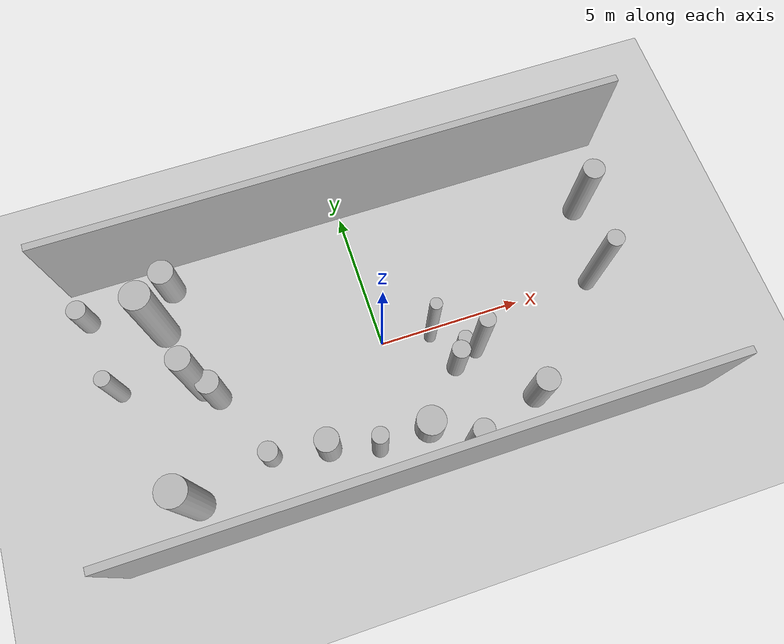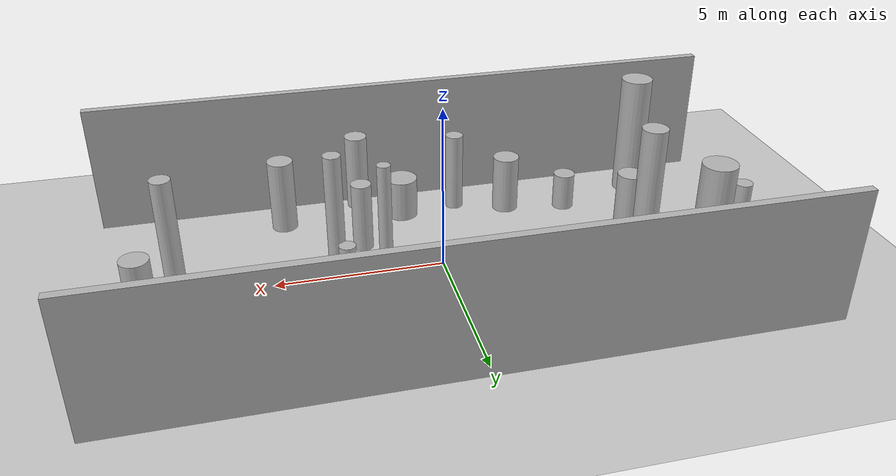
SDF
<?xml version="1.0"?>
<sdf version="1.4">
  <world name="default">
    <gui>
      <camera name="user_camera">
        <pose>-20 -30 40 0 0.66 0.83</pose>
      </camera>
    </gui>
    <include>
      <uri>model://ground_plane</uri>
    </include>
    <include>
      <uri>model://sun</uri>
    </include>
    <scene>
      <shadows>0</shadows>
    </scene>
    <model name="forest">
      <static>true</static>
      <link name="cylinder0">
        <pose>-9.524683517385185 3.9106800331254163 0.7369707810707871 0 0 0 </pose>
        <visual name="visual">
          <geometry>
            <cylinder>
              <radius>0.3395952693775499</radius>
              <length>1.4739415621415741</length>
            </cylinder>
          </geometry>
        </visual>
        <collision name="collision">
          <geometry>
            <cylinder>
              <radius>0.3395952693775499</radius>
              <length>1.4739415621415741</length>
            </cylinder>
          </geometry>
          <max_contacts>0</max_contacts>
        </collision>
      </link>
      <link name="cylinder1">
        <pose>-4.702499430993208 -2.5879077317893007 0.5870606463088909 0 0 0 </pose>
        <visual name="visual">
          <geometry>
            <cylinder>
              <radius>0.33720655493109963</radius>
              <length>1.1741212926177818</length>
            </cylinder>
          </geometry>
        </visual>
        <collision name="collision">
          <geometry>
            <cylinder>
              <radius>0.33720655493109963</radius>
              <length>1.1741212926177818</length>
            </cylinder>
          </geometry>
          <max_contacts>0</max_contacts>
        </collision>
      </link>
      <link name="cylinder2">
        <pose>1.6672184750476067 -0.2584760173901284 1.687309474095269 0 0 0 </pose>
        <visual name="visual">
          <geometry>
            <cylinder>
              <radius>0.20173988861526432</radius>
              <length>3.374618948190538</length>
            </cylinder>
          </geometry>
        </visual>
        <collision name="collision">
          <geometry>
            <cylinder>
              <radius>0.20173988861526432</radius>
              <length>3.374618948190538</length>
            </cylinder>
          </geometry>
          <max_contacts>0</max_contacts>
        </collision>
      </link>
      <link name="cylinder3">
        <pose>7.688155917897991 -0.06957990305944328 1.8793049312200603 0 0 0 </pose>
        <visual name="visual">
          <geometry>
            <cylinder>
              <radius>0.29091086513332215</radius>
              <length>3.7586098624401205</length>
            </cylinder>
          </geometry>
        </visual>
        <collision name="collision">
          <geometry>
            <cylinder>
              <radius>0.29091086513332215</radius>
              <length>3.7586098624401205</length>
            </cylinder>
          </geometry>
          <max_contacts>0</max_contacts>
        </collision>
      </link>
      <link name="cylinder4">
        <pose>3.004335067155184 -1.2318307756493239 1.6834816515293975 0 0 0 </pose>
        <visual name="visual">
          <geometry>
            <cylinder>
              <radius>0.26851680998637206</radius>
              <length>3.366963303058795</length>
            </cylinder>
          </geometry>
        </visual>
        <collision name="collision">
          <geometry>
            <cylinder>
              <radius>0.26851680998637206</radius>
              <length>3.366963303058795</length>
            </cylinder>
          </geometry>
          <max_contacts>0</max_contacts>
        </collision>
      </link>
      <link name="cylinder5">
        <pose>-2.8087865843302247 -2.941192113667599 0.9160019966285937 0 0 0 </pose>
        <visual name="visual">
          <geometry>
            <cylinder>
              <radius>0.40796344762748826</radius>
              <length>1.8320039932571874</length>
            </cylinder>
          </geometry>
        </visual>
        <collision name="collision">
          <geometry>
            <cylinder>
              <radius>0.40796344762748826</radius>
              <length>1.8320039932571874</length>
            </cylinder>
          </geometry>
          <max_contacts>0</max_contacts>
        </collision>
      </link>
      <link name="cylinder6">
        <pose>-6.268932718450515 0.3308228093597565 1.9468674694366217 0 0 0 </pose>
        <visual name="visual">
          <geometry>
            <cylinder>
              <radius>0.39291354896537967</radius>
              <length>3.8937349388732434</length>
            </cylinder>
          </geometry>
        </visual>
        <collision name="collision">
          <geometry>
            <cylinder>
              <radius>0.39291354896537967</radius>
              <length>3.8937349388732434</length>
            </cylinder>
          </geometry>
          <max_contacts>0</max_contacts>
        </collision>
      </link>
      <link name="cylinder7">
        <pose>-7.072713971237929 2.718730831547992 1.904356898533672 0 0 0 </pose>
        <visual name="visual">
          <geometry>
            <cylinder>
              <radius>0.4962641617112107</radius>
              <length>3.808713797067344</length>
            </cylinder>
          </geometry>
        </visual>
        <collision name="collision">
          <geometry>
            <cylinder>
              <radius>0.4962641617112107</radius>
              <length>3.808713797067344</length>
            </cylinder>
          </geometry>
          <max_contacts>0</max_contacts>
        </collision>
      </link>
      <link name="cylinder8">
        <pose>4.369306679728659 -3.380330524331315 1.1553977149110874 0 0 0 </pose>
        <visual name="visual">
          <geometry>
            <cylinder>
              <radius>0.3972978115320731</radius>
              <length>2.310795429822175</length>
            </cylinder>
          </geometry>
        </visual>
        <collision name="collision">
          <geometry>
            <cylinder>
              <radius>0.3972978115320731</radius>
              <length>2.310795429822175</length>
            </cylinder>
          </geometry>
          <max_contacts>0</max_contacts>
        </collision>
      </link>
      <link name="cylinder9">
        <pose>2.7445847223248734 -0.8110658193645222 0.28138786414686034 0 0 0 </pose>
        <visual name="visual">
          <geometry>
            <cylinder>
              <radius>0.25941667350547315</radius>
              <length>0.5627757282937207</length>
            </cylinder>
          </geometry>
        </visual>
        <collision name="collision">
          <geometry>
            <cylinder>
              <radius>0.25941667350547315</radius>
              <length>0.5627757282937207</length>
            </cylinder>
          </geometry>
          <max_contacts>0</max_contacts>
        </collision>
      </link>
      <link name="cylinder10">
        <pose>-1.2092318481896953 -3.461729651955443 1.2689846242819258 0 0 0 </pose>
        <visual name="visual">
          <geometry>
            <cylinder>
              <radius>0.27571338332778517</radius>
              <length>2.5379692485638516</length>
            </cylinder>
          </geometry>
        </visual>
        <collision name="collision">
          <geometry>
            <cylinder>
              <radius>0.27571338332778517</radius>
              <length>2.5379692485638516</length>
            </cylinder>
          </geometry>
          <max_contacts>0</max_contacts>
        </collision>
      </link>
      <link name="cylinder11">
        <pose>-8.986371427066853 1.0600600057077898 1.0689814412366374 0 0 0 </pose>
        <visual name="visual">
          <geometry>
            <cylinder>
              <radius>0.2700745021511509</radius>
              <length>2.137962882473275</length>
            </cylinder>
          </geometry>
        </visual>
        <collision name="collision">
          <geometry>
            <cylinder>
              <radius>0.2700745021511509</radius>
              <length>2.137962882473275</length>
            </cylinder>
          </geometry>
          <max_contacts>0</max_contacts>
        </collision>
      </link>
      <link name="cylinder12">
        <pose>-6.470345794117332 4.202489569026156 0.9104036794869905 0 0 0 </pose>
        <visual name="visual">
          <geometry>
            <cylinder>
              <radius>0.44092087931713375</radius>
              <length>1.820807358973981</length>
            </cylinder>
          </geometry>
        </visual>
        <collision name="collision">
          <geometry>
            <cylinder>
              <radius>0.44092087931713375</radius>
              <length>1.820807358973981</length>
            </cylinder>
          </geometry>
          <max_contacts>0</max_contacts>
        </collision>
      </link>
      <link name="cylinder13">
        <pose>-7.339269510766533 -3.3745178871956605 1.9556725201390301 0 0 0 </pose>
        <visual name="visual">
          <geometry>
            <cylinder>
              <radius>0.4934014576348478</radius>
              <length>3.9113450402780603</length>
            </cylinder>
          </geometry>
        </visual>
        <collision name="collision">
          <geometry>
            <cylinder>
              <radius>0.4934014576348478</radius>
              <length>3.9113450402780603</length>
            </cylinder>
          </geometry>
          <max_contacts>0</max_contacts>
        </collision>
      </link>
      <link name="cylinder14">
        <pose>1.8641241583226886 -4.269658202979322 1.2369880691267117 0 0 0 </pose>
        <visual name="visual">
          <geometry>
            <cylinder>
              <radius>0.3543445324166665</radius>
              <length>2.4739761382534233</length>
            </cylinder>
          </geometry>
        </visual>
        <collision name="collision">
          <geometry>
            <cylinder>
              <radius>0.3543445324166665</radius>
              <length>2.4739761382534233</length>
            </cylinder>
          </geometry>
          <max_contacts>0</max_contacts>
        </collision>
      </link>
      <link name="cylinder15">
        <pose>2.1455216052788906 -1.5772080986515236 1.0800506278823399 0 0 0 </pose>
        <visual name="visual">
          <geometry>
            <cylinder>
              <radius>0.30873776897132343</radius>
              <length>2.1601012557646797</length>
            </cylinder>
          </geometry>
        </visual>
        <collision name="collision">
          <geometry>
            <cylinder>
              <radius>0.30873776897132343</radius>
              <length>2.1601012557646797</length>
            </cylinder>
          </geometry>
          <max_contacts>0</max_contacts>
        </collision>
      </link>
      <link name="cylinder16">
        <pose>-7.2768774143294745 -3.375599063161835 1.3662411589847587 0 0 0 </pose>
        <visual name="visual">
          <geometry>
            <cylinder>
              <radius>0.24739051244190216</radius>
              <length>2.7324823179695175</length>
            </cylinder>
          </geometry>
        </visual>
        <collision name="collision">
          <geometry>
            <cylinder>
              <radius>0.24739051244190216</radius>
              <length>2.7324823179695175</length>
            </cylinder>
          </geometry>
          <max_contacts>0</max_contacts>
        </collision>
      </link>
      <link name="cylinder17">
        <pose>8.339870925934626 2.7172924563581766 1.540452204070264 0 0 0 </pose>
        <visual name="visual">
          <geometry>
            <cylinder>
              <radius>0.37537440562501045</radius>
              <length>3.080904408140528</length>
            </cylinder>
          </geometry>
        </visual>
        <collision name="collision">
          <geometry>
            <cylinder>
              <radius>0.37537440562501045</radius>
              <length>3.080904408140528</length>
            </cylinder>
          </geometry>
          <max_contacts>0</max_contacts>
        </collision>
      </link>
      <link name="cylinder18">
        <pose>0.5818581464979182 -3.297183777798305 0.653562854705867 0 0 0 </pose>
        <visual name="visual">
          <geometry>
            <cylinder>
              <radius>0.4983051693381692</radius>
              <length>1.307125709411734</length>
            </cylinder>
          </geometry>
        </visual>
        <collision name="collision">
          <geometry>
            <cylinder>
              <radius>0.4983051693381692</radius>
              <length>1.307125709411734</length>
            </cylinder>
          </geometry>
          <max_contacts>0</max_contacts>
        </collision>
      </link>
      <link name="cylinder19">
        <pose>-5.850324476864466 -0.11060131070290158 1.1291800352502963 0 0 0 </pose>
        <visual name="visual">
          <geometry>
            <cylinder>
              <radius>0.3922972244163095</radius>
              <length>2.2583600705005926</length>
            </cylinder>
          </geometry>
        </visual>
        <collision name="collision">
          <geometry>
            <cylinder>
              <radius>0.3922972244163095</radius>
              <length>2.2583600705005926</length>
            </cylinder>
          </geometry>
          <max_contacts>0</max_contacts>
        </collision>
      </link>
      <link name="cube0">
        <pose>0 5.25 2.0 0 0 0 </pose>
        <visual name="visual">
          <geometry>
            <box>
              <size>20 0.25 4.0</size>
            </box>
          </geometry>
        </visual>
        <collision name="collision">
          <geometry>
            <box>
              <size>20 0.25 4.0</size>
            </box>
          </geometry>
          <max_contacts>0</max_contacts>
        </collision>
      </link>
      <link name="cube1">
        <pose>0 -4.75 2.0 0 0 0 </pose>
        <visual name="visual">
          <geometry>
            <box>
              <size>20 0.25 4.0</size>
            </box>
          </geometry>
        </visual>
        <collision name="collision">
          <geometry>
            <box>
              <size>20 0.25 4.0</size>
            </box>
          </geometry>
          <max_contacts>0</max_contacts>
        </collision>
      </link>
    </model>
    <!-- Plugins -->
    <plugin name="gazebo_octomap" filename="librotors_gazebo_octomap_plugin.so"/>
    <plugin name="ros_interface_plugin" filename="librotors_gazebo_ros_interface_plugin.so"/>
    <!-- Physics -->
    <physics name="default_physics" default="0" type="ode">
      <max_step_size>0.004</max_step_size>
      <real_time_factor>1</real_time_factor>
      <real_time_update_rate>250</real_time_update_rate>
      <gravity>0 0 -9.8</gravity>
      <magnetic_field>6e-06 2.3e-05 -4.2e-05</magnetic_field>
      <ode>
        <solver>
          <type>quick</type>
          <iters>1000</iters>
          <sor>1.3</sor>
          <use_dynamic_moi_rescaling>0</use_dynamic_moi_rescaling>
        </solver>
        <constraints>
          <cfm>0</cfm>
          <erp>0.2</erp>
          <contact_max_correcting_vel>100</contact_max_correcting_vel>
          <contact_surface_layer>0.001</contact_surface_layer>
        </constraints>
      </ode>
    </physics>
  </world>
</sdf>
